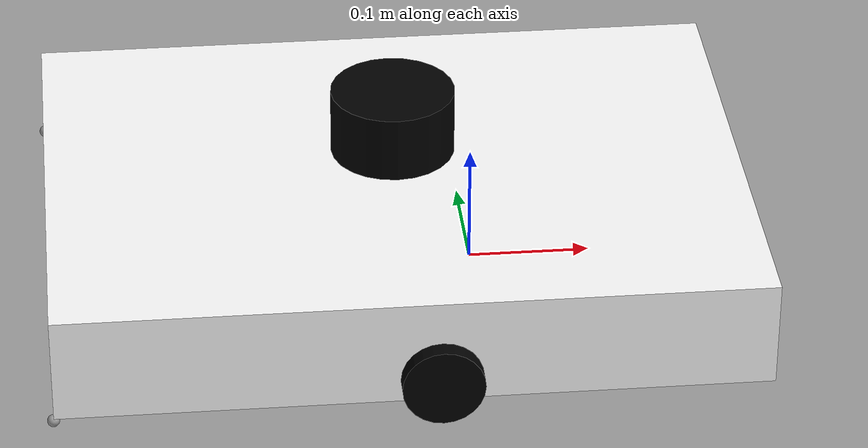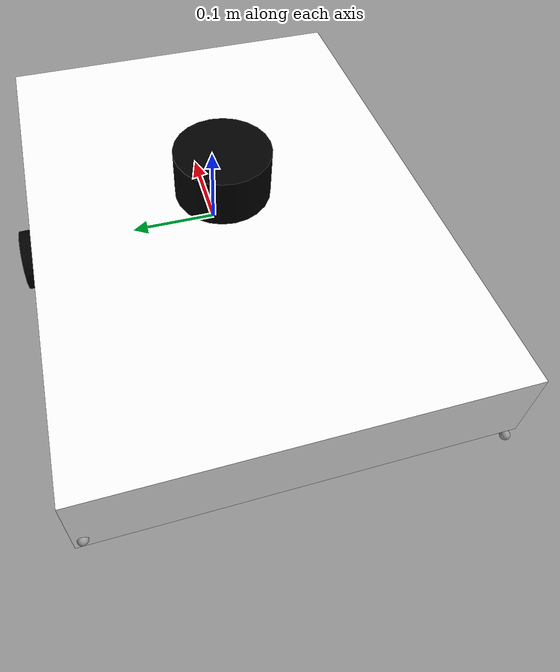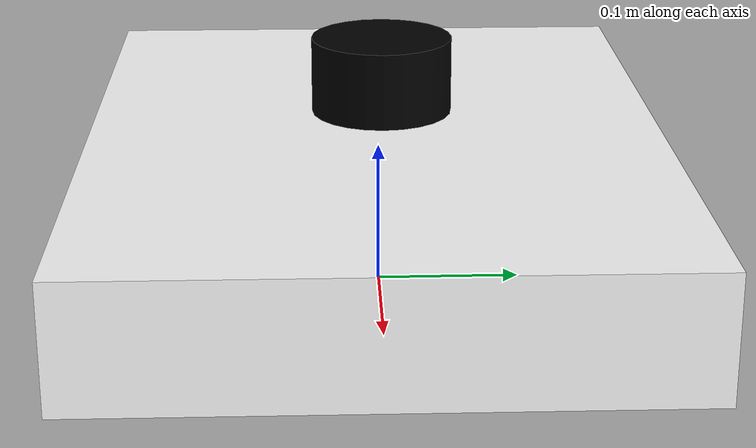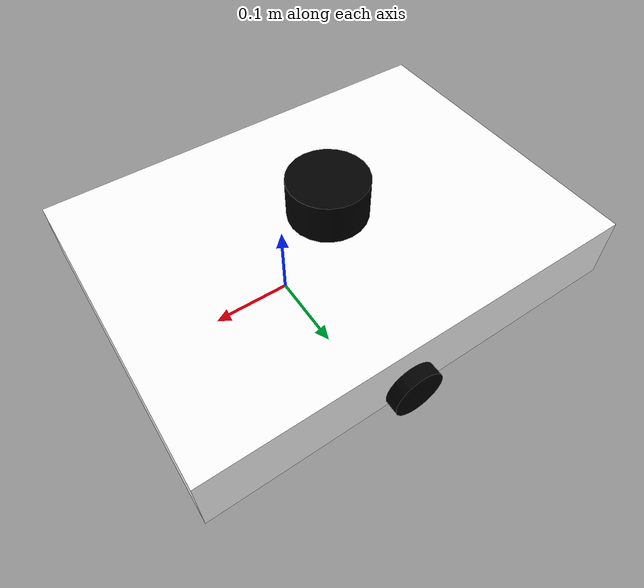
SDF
<?xml version='1.0'?>
<sdf version='1.7'>
  <model name='NKBot'>
    <link name='base_footprint'>
      <self_collide>0</self_collide>
      <inertial>
        <pose>0 0 0 0 -0 0</pose>
        <inertia>
          <ixx>1</ixx>
          <ixy>0</ixy>
          <ixz>0</ixz>
          <iyy>1</iyy>
          <iyz>0</iyz>
          <izz>1</izz>
        </inertia>
        <mass>1</mass>
      </inertial>
      <enable_wind>0</enable_wind>
      <kinematic>0</kinematic>
      <pose>0 0 0 0 -0 0</pose>
    </link>
    <link name='base_link'>
      <inertial>
        <pose>-0.064 0 0.048 0 -0 0</pose>
        <inertia>
          <ixx>0.0711607</ixx>
          <ixy>0</ixy>
          <ixz>0</ixz>
          <iyy>0.130242</iyy>
          <iyz>0</iyz>
          <izz>0.195235</izz>
        </inertia>
        <mass>4.67201</mass>
      </inertial>
      <self_collide>0</self_collide>
      <enable_wind>0</enable_wind>
      <kinematic>0</kinematic>
      <pose>0 0 0 0 -0 0</pose>
      <gravity>1</gravity>
      <visual name='base_visual'>
        <pose>-0.064 0 0.048 0 -0 0</pose>
        <geometry>
          <box>
            <size>0.571492 0.418156 0.089</size>
          </box>
        </geometry>
        <material>
          <shader type='pixel'>
            <normal_map>__default__</normal_map>
          </shader>
          <script>
            <name>ModelPreview_4::base_link::base_visual_MATERIAL_</name>
          </script>
          <ambient>0 0 0 1</ambient>
          <diffuse>1 1 1 1</diffuse>
          <specular>0 0 0 1</specular>
          <emissive>0 0 0 1</emissive>
        </material>
        <transparency>0</transparency>
        <cast_shadows>1</cast_shadows>
      </visual>
      <collision name='base_collision'>
        <laser_retro>0</laser_retro>
        <max_contacts>10</max_contacts>
        <pose>-0.064 0 0.048 0 -0 0</pose>
        <geometry>
          <box>
            <size>0.571492 0.418156 0.089</size>
          </box>
        </geometry>
        <surface>
          <friction>
            <ode>
              <mu>1</mu>
              <mu2>1</mu2>
              <fdir1>0 0 0</fdir1>
              <slip1>0</slip1>
              <slip2>0</slip2>
            </ode>
            <torsional>
              <coefficient>1</coefficient>
              <patch_radius>0</patch_radius>
              <surface_radius>0</surface_radius>
              <use_patch_radius>1</use_patch_radius>
              <ode>
                <slip>0</slip>
              </ode>
            </torsional>
          </friction>
          <bounce>
            <restitution_coefficient>0</restitution_coefficient>
            <threshold>1e+06</threshold>
          </bounce>
          <contact>
            <collide_without_contact>0</collide_without_contact>
            <collide_without_contact_bitmask>1</collide_without_contact_bitmask>
            <collide_bitmask>1</collide_bitmask>
            <ode>
              <soft_cfm>0</soft_cfm>
              <soft_erp>0.2</soft_erp>
              <kp>1e+13</kp>
              <kd>1</kd>
              <max_vel>0.01</max_vel>
              <min_depth>0</min_depth>
            </ode>
            <bullet>
              <split_impulse>1</split_impulse>
              <split_impulse_penetration_threshold>-0.01</split_impulse_penetration_threshold>
              <soft_cfm>0</soft_cfm>
              <soft_erp>0.2</soft_erp>
              <kp>1e+13</kp>
              <kd>1</kd>
            </bullet>
          </contact>
        </surface>
      </collision>
    </link>
    <link name='base_scan'>
      <inertial>
        <pose>-0.052 0 0.811 0 -0 0</pose>
        <inertia>
          <ixx>0.001</ixx>
          <ixy>0</ixy>
          <ixz>0</ixz>
          <iyy>0.001</iyy>
          <iyz>0</iyz>
          <izz>0.001</izz>
        </inertia>
        <mass>0.114</mass>
      </inertial>
      <sensor name='hls_lfcd_lds' type='ray'>
        <always_on>1</always_on>
        <visualize>0</visualize>
        <pose>-0.064 0 0.221 0 -0 0</pose>
        <update_rate>30</update_rate>
        <ray>
          <scan>
            <horizontal>
              <samples>360</samples>
              <resolution>1</resolution>
              <min_angle>0.0</min_angle>
              <max_angle>6.28</max_angle>
            </horizontal>
            <vertical>
              <samples>1</samples>
              <min_angle>0</min_angle>
              <max_angle>0</max_angle>
            </vertical>
          </scan>
          <range>
            <min>0.12</min>
            <max>12.0</max>
            <resolution>0.015</resolution>
          </range>
          <noise>
            <type>gaussian</type>
            <mean>0</mean>
            <stddev>0.01</stddev>
          </noise>
        </ray>
        <plugin name='turtlebot3_laserscan' filename='libgazebo_ros_ray_sensor.so'>
          <ros>
            <remapping>~/out:=scan</remapping>
          </ros>
          <output_type>sensor_msgs/LaserScan</output_type>
          <frame_name>base_scan</frame_name>
        </plugin>
      </sensor>
      <self_collide>0</self_collide>
      <enable_wind>0</enable_wind>
      <kinematic>0</kinematic>
      <pose>-0 0.00443 0.012894 0 -0 0</pose>
      <gravity>1</gravity>
      <visual name='lidar_sensor_visual'>
        <pose>-0.064 0 0.121 0 -0 0</pose>
        <geometry>
          <cylinder>
            <radius>0.0508</radius>
            <length>0.055</length>
          </cylinder>
        </geometry>
        <material>
          <shader type='pixel'>
            <normal_map>__default__</normal_map>
          </shader>
          <ambient>0 0 0 1</ambient>
          <diffuse>0 0 0 1</diffuse>
          <specular>0 0 0 1</specular>
          <emissive>0 0 0 1</emissive>
          <script>
            <name>ModelPreview_1::base_scan::lidar_sensor_visual_MATERIAL_</name>
            <uri>__default__</uri>
          </script>
        </material>
        <transparency>0</transparency>
        <cast_shadows>1</cast_shadows>
      </visual>
      <collision name='lidar_sensor_collision'>
        <laser_retro>0</laser_retro>
        <max_contacts>10</max_contacts>
        <pose>-0.052 0 0.111 0 -0 0</pose>
        <geometry>
          <cylinder>
            <radius>0.0508</radius>
            <length>0.055</length>
          </cylinder>
        </geometry>
        <surface>
          <friction>
            <ode>
              <mu>1</mu>
              <mu2>1</mu2>
              <fdir1>0 0 0</fdir1>
              <slip1>0</slip1>
              <slip2>0</slip2>
            </ode>
            <torsional>
              <coefficient>1</coefficient>
              <patch_radius>0</patch_radius>
              <surface_radius>0</surface_radius>
              <use_patch_radius>1</use_patch_radius>
              <ode>
                <slip>0</slip>
              </ode>
            </torsional>
          </friction>
          <bounce>
            <restitution_coefficient>0</restitution_coefficient>
            <threshold>1e+06</threshold>
          </bounce>
          <contact>
            <collide_without_contact>0</collide_without_contact>
            <collide_without_contact_bitmask>1</collide_without_contact_bitmask>
            <collide_bitmask>1</collide_bitmask>
            <ode>
              <soft_cfm>0</soft_cfm>
              <soft_erp>0.2</soft_erp>
              <kp>1e+13</kp>
              <kd>1</kd>
              <max_vel>0.01</max_vel>
              <min_depth>0</min_depth>
            </ode>
            <bullet>
              <split_impulse>1</split_impulse>
              <split_impulse_penetration_threshold>-0.01</split_impulse_penetration_threshold>
              <soft_cfm>0</soft_cfm>
              <soft_erp>0.2</soft_erp>
              <kp>1e+13</kp>
              <kd>1</kd>
            </bullet>
          </contact>
        </surface>
      </collision>
    </link>
    <link name='caster_back_left_link'>
      <pose>-0.35 0.2 0.019172 -1.57 -0 0</pose>
      <inertial>
        <mass>0.001</mass>
        <inertia>
          <ixx>1e-05</ixx>
          <ixy>0</ixy>
          <ixz>0</ixz>
          <iyy>1e-05</iyy>
          <iyz>0</iyz>
          <izz>1e-05</izz>
        </inertia>
        <pose>0 0 0 0 -0 0</pose>
      </inertial>
      <self_collide>0</self_collide>
      <enable_wind>0</enable_wind>
      <kinematic>0</kinematic>
      <gravity>1</gravity>
      <visual name='visual'>
        <pose>0 0 0 0 -0 0</pose>
        <geometry>
          <sphere>
            <radius>0.005</radius>
          </sphere>
        </geometry>
        <material>
          <lighting>1</lighting>
          <script>
            <uri>file://media/materials/scripts/gazebo.material</uri>
            <name>Gazebo/Grey</name>
          </script>
          <shader type='pixel'>
            <normal_map>__default__</normal_map>
          </shader>
          <ambient>0.3 0.3 0.3 1</ambient>
          <diffuse>0.7 0.7 0.7 1</diffuse>
          <specular>0.01 0.01 0.01 1</specular>
          <emissive>0 0 0 1</emissive>
        </material>
        <transparency>0</transparency>
        <cast_shadows>1</cast_shadows>
      </visual>
      <collision name='collision'>
        <laser_retro>0</laser_retro>
        <max_contacts>10</max_contacts>
        <pose>0 0 0 0 -0 0</pose>
        <geometry>
          <sphere>
            <radius>0.005</radius>
          </sphere>
        </geometry>
        <surface>
          <friction>
            <ode>
              <mu>1</mu>
              <mu2>1</mu2>
              <fdir1>0 0 0</fdir1>
              <slip1>0</slip1>
              <slip2>0</slip2>
            </ode>
            <torsional>
              <coefficient>1</coefficient>
              <patch_radius>0</patch_radius>
              <surface_radius>0</surface_radius>
              <use_patch_radius>1</use_patch_radius>
              <ode>
                <slip>0</slip>
              </ode>
            </torsional>
          </friction>
          <bounce>
            <restitution_coefficient>0</restitution_coefficient>
            <threshold>1e+06</threshold>
          </bounce>
          <contact>
            <collide_without_contact>0</collide_without_contact>
            <collide_without_contact_bitmask>1</collide_without_contact_bitmask>
            <collide_bitmask>1</collide_bitmask>
            <ode>
              <soft_cfm>0</soft_cfm>
              <soft_erp>0.2</soft_erp>
              <kp>100000</kp>
              <kd>1</kd>
              <max_vel>0.01</max_vel>
              <min_depth>0.001</min_depth>
            </ode>
            <bullet>
              <split_impulse>1</split_impulse>
              <split_impulse_penetration_threshold>-0.01</split_impulse_penetration_threshold>
              <soft_cfm>0</soft_cfm>
              <soft_erp>0.2</soft_erp>
              <kp>100000</kp>
              <kd>1</kd>
            </bullet>
          </contact>
        </surface>
      </collision>
    </link>
    <link name='caster_back_right_link'>
      <pose>-0.35 -0.2 -0.004113 -1.57 -0 0</pose>
      <inertial>
        <mass>0.001</mass>
        <inertia>
          <ixx>1e-05</ixx>
          <ixy>0</ixy>
          <ixz>0</ixz>
          <iyy>1e-05</iyy>
          <iyz>0</iyz>
          <izz>1e-05</izz>
        </inertia>
        <pose>0 0 0 0 -0 0</pose>
      </inertial>
      <self_collide>0</self_collide>
      <enable_wind>0</enable_wind>
      <kinematic>0</kinematic>
      <gravity>1</gravity>
      <visual name='visual'>
        <pose>0 0 0 0 -0 0</pose>
        <geometry>
          <sphere>
            <radius>0.005</radius>
          </sphere>
        </geometry>
        <material>
          <lighting>1</lighting>
          <script>
            <uri>file://media/materials/scripts/gazebo.material</uri>
            <name>Gazebo/Grey</name>
          </script>
          <shader type='pixel'>
            <normal_map>__default__</normal_map>
          </shader>
          <ambient>0.3 0.3 0.3 1</ambient>
          <diffuse>0.7 0.7 0.7 1</diffuse>
          <specular>0.01 0.01 0.01 1</specular>
          <emissive>0 0 0 1</emissive>
        </material>
        <transparency>0</transparency>
        <cast_shadows>1</cast_shadows>
      </visual>
      <collision name='collision'>
        <laser_retro>0</laser_retro>
        <max_contacts>10</max_contacts>
        <pose>0 0 0 0 -0 0</pose>
        <geometry>
          <sphere>
            <radius>0.005</radius>
          </sphere>
        </geometry>
        <surface>
          <friction>
            <ode>
              <mu>1</mu>
              <mu2>1</mu2>
              <fdir1>0 0 0</fdir1>
              <slip1>0</slip1>
              <slip2>0</slip2>
            </ode>
            <torsional>
              <coefficient>1</coefficient>
              <patch_radius>0</patch_radius>
              <surface_radius>0</surface_radius>
              <use_patch_radius>1</use_patch_radius>
              <ode>
                <slip>0</slip>
              </ode>
            </torsional>
          </friction>
          <bounce>
            <restitution_coefficient>0</restitution_coefficient>
            <threshold>1e+06</threshold>
          </bounce>
          <contact>
            <collide_without_contact>0</collide_without_contact>
            <collide_without_contact_bitmask>1</collide_without_contact_bitmask>
            <collide_bitmask>1</collide_bitmask>
            <ode>
              <soft_cfm>0</soft_cfm>
              <soft_erp>0.2</soft_erp>
              <kp>100000</kp>
              <kd>1</kd>
              <max_vel>0.01</max_vel>
              <min_depth>0.001</min_depth>
            </ode>
            <bullet>
              <split_impulse>1</split_impulse>
              <split_impulse_penetration_threshold>-0.01</split_impulse_penetration_threshold>
              <soft_cfm>0</soft_cfm>
              <soft_erp>0.2</soft_erp>
              <kp>100000</kp>
              <kd>1</kd>
            </bullet>
          </contact>
        </surface>
      </collision>
    </link>
    <link name='wheel_left_link'>
      <inertial>
        <pose>0 0.15 0.023 -1.57 0 0</pose>
        <inertia>
          <ixx>1.118e-05</ixx>
          <ixy>0</ixy>
          <ixz>0</ixz>
          <iyy>1.119e-05</iyy>
          <iyz>0</iyz>
          <izz>2.071e-05</izz>
        </inertia>
        <mass>0.1</mass>
      </inertial>
      <self_collide>0</self_collide>
      <enable_wind>0</enable_wind>
      <kinematic>0</kinematic>
      <pose>-0.034629 0.074023 0 0 -0 0</pose>
      <gravity>1</gravity>
      <visual name='wheel_left_visual'>
        <pose>0 0.144 0.023 1.57002 1.57 2.4e-05</pose>
        <geometry>
          <cylinder>
            <radius>0.033</radius>
            <length>0.018</length>
          </cylinder>
        </geometry>
        <material>
          <shader type='pixel'>
            <normal_map>__default__</normal_map>
          </shader>
          <ambient>0 0 0 1</ambient>
          <diffuse>0 0 0 1</diffuse>
          <specular>0 0 0 1</specular>
          <emissive>0 0 0 1</emissive>
          <script>
            <name>ModelPreview_1::wheel_left_link::wheel_left_visual_MATERIAL_</name>
            <uri>__default__</uri>
          </script>
        </material>
        <transparency>0</transparency>
        <cast_shadows>1</cast_shadows>
      </visual>
      <collision name='wheel_left_collision'>
        <laser_retro>0</laser_retro>
        <max_contacts>10</max_contacts>
        <pose>0 0.144 0.023 -1.57 0 0</pose>
        <geometry>
          <cylinder>
            <radius>0.033</radius>
            <length>0.018</length>
          </cylinder>
        </geometry>
        <surface>
          <friction>
            <ode>
              <mu>100000</mu>
              <mu2>100000</mu2>
              <fdir1>0 0 0</fdir1>
              <slip1>0</slip1>
              <slip2>0</slip2>
            </ode>
            <torsional>
              <coefficient>1</coefficient>
              <patch_radius>0</patch_radius>
              <surface_radius>0</surface_radius>
              <use_patch_radius>1</use_patch_radius>
              <ode>
                <slip>0</slip>
              </ode>
            </torsional>
          </friction>
          <bounce>
            <restitution_coefficient>0</restitution_coefficient>
            <threshold>1e+06</threshold>
          </bounce>
          <contact>
            <collide_without_contact>0</collide_without_contact>
            <collide_without_contact_bitmask>1</collide_without_contact_bitmask>
            <collide_bitmask>1</collide_bitmask>
            <ode>
              <soft_cfm>0</soft_cfm>
              <soft_erp>0.2</soft_erp>
              <kp>100000</kp>
              <kd>1</kd>
              <max_vel>0.01</max_vel>
              <min_depth>0.001</min_depth>
            </ode>
            <bullet>
              <split_impulse>1</split_impulse>
              <split_impulse_penetration_threshold>-0.01</split_impulse_penetration_threshold>
              <soft_cfm>0</soft_cfm>
              <soft_erp>0.2</soft_erp>
              <kp>100000</kp>
              <kd>1</kd>
            </bullet>
          </contact>
        </surface>
      </collision>
    </link>
    <link name='wheel_right_link'>
      <inertial>
        <pose>0 -0.15 0.023 -1.57 0 0</pose>
        <inertia>
          <ixx>1.118e-05</ixx>
          <ixy>0</ixy>
          <ixz>0</ixz>
          <iyy>1.119e-05</iyy>
          <iyz>0</iyz>
          <izz>2.071e-05</izz>
        </inertia>
        <mass>0.1</mass>
      </inertial>
      <self_collide>0</self_collide>
      <enable_wind>0</enable_wind>
      <kinematic>0</kinematic>
      <pose>-0.044189 -0.070364 0 0 -0 0</pose>
      <gravity>1</gravity>
      <visual name='wheel_right_visual'>
        <pose>0 -0.144 0.023 2.4e-05 1.57 1.57002</pose>
        <geometry>
          <cylinder>
            <radius>0.033</radius>
            <length>0.018</length>
          </cylinder>
        </geometry>
        <material>
          <shader type='pixel'>
            <normal_map>__default__</normal_map>
          </shader>
          <ambient>0 0 0 1</ambient>
          <diffuse>0 0 0 1</diffuse>
          <specular>0 0 0 1</specular>
          <emissive>0 0 0 1</emissive>
          <script>
            <name>ModelPreview_1::wheel_right_link::wheel_right_visual_MATERIAL_</name>
            <uri>__default__</uri>
          </script>
        </material>
        <transparency>0</transparency>
        <cast_shadows>1</cast_shadows>
      </visual>
      <collision name='wheel_right_collision'>
        <laser_retro>0</laser_retro>
        <max_contacts>10</max_contacts>
        <pose>0 -0.144 0.023 -1.57 0 0</pose>
        <geometry>
          <cylinder>
            <radius>0.033</radius>
            <length>0.018</length>
          </cylinder>
        </geometry>
        <surface>
          <friction>
            <ode>
              <mu>100000</mu>
              <mu2>100000</mu2>
              <fdir1>0 0 0</fdir1>
              <slip1>0</slip1>
              <slip2>0</slip2>
            </ode>
            <torsional>
              <coefficient>1</coefficient>
              <patch_radius>0</patch_radius>
              <surface_radius>0</surface_radius>
              <use_patch_radius>1</use_patch_radius>
              <ode>
                <slip>0</slip>
              </ode>
            </torsional>
          </friction>
          <bounce>
            <restitution_coefficient>0</restitution_coefficient>
            <threshold>1e+06</threshold>
          </bounce>
          <contact>
            <collide_without_contact>0</collide_without_contact>
            <collide_without_contact_bitmask>1</collide_without_contact_bitmask>
            <collide_bitmask>1</collide_bitmask>
            <ode>
              <soft_cfm>0</soft_cfm>
              <soft_erp>0.2</soft_erp>
              <kp>100000</kp>
              <kd>1</kd>
              <max_vel>0.01</max_vel>
              <min_depth>0.001</min_depth>
            </ode>
            <bullet>
              <split_impulse>1</split_impulse>
              <split_impulse_penetration_threshold>-0.01</split_impulse_penetration_threshold>
              <soft_cfm>0</soft_cfm>
              <soft_erp>0.2</soft_erp>
              <kp>100000</kp>
              <kd>1</kd>
            </bullet>
          </contact>
        </surface>
      </collision>
    </link>
    <joint name='base_joint' type='fixed'>
      <parent>base_footprint</parent>
      <child>base_link</child>
      <pose>0 0 0.01 0 -0 0</pose>
      <physics>
        <ode>
          <limit>
            <cfm>0</cfm>
            <erp>0.2</erp>
          </limit>
          <suspension>
            <cfm>0</cfm>
            <erp>0.2</erp>
          </suspension>
        </ode>
      </physics>
    </joint>
    <joint name='caster_back_left_joint' type='ball'>
      <parent>base_link</parent>
      <child>caster_back_left_link</child>
      <pose>0 0 0 0 -0 0</pose>
      <physics>
        <ode>
          <limit>
            <cfm>0</cfm>
            <erp>0.2</erp>
          </limit>
          <suspension>
            <cfm>0</cfm>
            <erp>0.2</erp>
          </suspension>
        </ode>
      </physics>
    </joint>
    <joint name='caster_back_right_joint' type='ball'>
      <parent>base_link</parent>
      <child>caster_back_right_link</child>
      <pose>0 0 0 0 -0 0</pose>
      <physics>
        <ode>
          <limit>
            <cfm>0</cfm>
            <erp>0.2</erp>
          </limit>
          <suspension>
            <cfm>0</cfm>
            <erp>0.2</erp>
          </suspension>
        </ode>
      </physics>
    </joint>
    <joint name='lidar_joint' type='fixed'>
      <parent>base_link</parent>
      <child>base_scan</child>
      <pose>-0.064 0 0.121 0 -0 0</pose>
      <physics>
        <ode>
          <limit>
            <cfm>0</cfm>
            <erp>0.2</erp>
          </limit>
          <suspension>
            <cfm>0</cfm>
            <erp>0.2</erp>
          </suspension>
        </ode>
      </physics>
    </joint>
    <joint name='wheel_left_joint' type='revolute'>
      <parent>base_link</parent>
      <child>wheel_left_link</child>
      <pose>0 0.144 0.023 -1.57 0 0</pose>
      <axis>
        <xyz>0 0 1</xyz>
        <limit>
          <lower>-1e+16</lower>
          <upper>1e+16</upper>
          <effort>-1</effort>
          <velocity>-1</velocity>
        </limit>
        <dynamics>
          <spring_reference>0</spring_reference>
          <spring_stiffness>0</spring_stiffness>
          <damping>0</damping>
          <friction>0</friction>
        </dynamics>
      </axis>
      <physics>
        <ode>
          <limit>
            <cfm>0</cfm>
            <erp>0.2</erp>
          </limit>
          <suspension>
            <cfm>0</cfm>
            <erp>0.2</erp>
          </suspension>
        </ode>
      </physics>
    </joint>
    <joint name='wheel_right_joint' type='revolute'>
      <parent>base_link</parent>
      <child>wheel_right_link</child>
      <pose>0 -0.144 0.023 -1.57 0 0</pose>
      <axis>
        <xyz>0 0 1</xyz>
        <limit>
          <lower>-1e+16</lower>
          <upper>1e+16</upper>
          <effort>-1</effort>
          <velocity>-1</velocity>
        </limit>
        <dynamics>
          <spring_reference>0</spring_reference>
          <spring_stiffness>0</spring_stiffness>
          <damping>0</damping>
          <friction>0</friction>
        </dynamics>
      </axis>
      <physics>
        <ode>
          <limit>
            <cfm>0</cfm>
            <erp>0.2</erp>
          </limit>
          <suspension>
            <cfm>0</cfm>
            <erp>0.2</erp>
          </suspension>
        </ode>
      </physics>
    </joint>
    <static>0</static>
    <allow_auto_disable>1</allow_auto_disable>
    <plugin name='turtlebot3_diff_drive' filename='libgazebo_ros_diff_drive.so'>
      <ros/>
      <update_rate>30</update_rate>
      <left_joint>wheel_left_joint</left_joint>
      <right_joint>wheel_right_joint</right_joint>
      <wheel_separation>0.287</wheel_separation>
      <wheel_diameter>0.066</wheel_diameter>
      <max_wheel_torque>20</max_wheel_torque>
      <max_wheel_acceleration>1.0</max_wheel_acceleration>
      <command_topic>cmd_vel</command_topic>
      <publish_odom>1</publish_odom>
      <publish_odom_tf>1</publish_odom_tf>
      <publish_wheel_tf>0</publish_wheel_tf>
      <odometry_topic>odom</odometry_topic>
      <odometry_frame>odom</odometry_frame>
      <robot_base_frame>base_footprint</robot_base_frame>
    </plugin>
    <plugin name='turtlebot3_joint_state' filename='libgazebo_ros_joint_state_publisher.so'>
      <ros>
        <remapping>~/out:=joint_states</remapping>
      </ros>
      <update_rate>30</update_rate>
      <joint_name>wheel_left_joint</joint_name>
      <joint_name>wheel_right_joint</joint_name>
    </plugin>
  </model>
</sdf>
